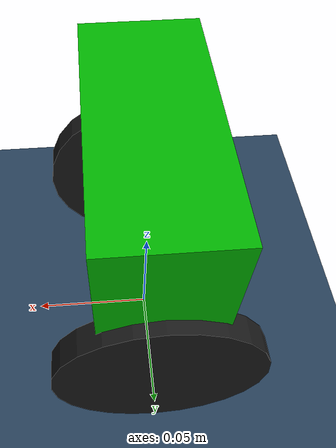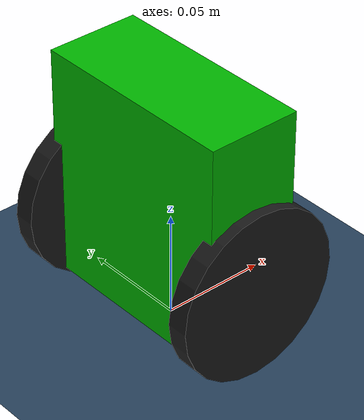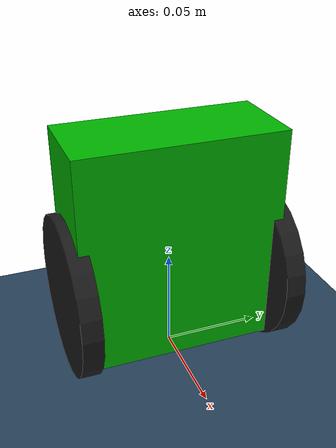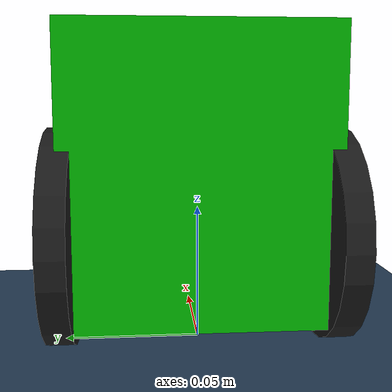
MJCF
<mujoco model="balboa_lab">
  <compiler angle="degree" coordinate="local" inertiafromgeom="false"/>
  <option timestep="0.002" gravity="0 0 -9.81" integrator="RK4"/>

  <default>
    <geom friction="2.5 0.1 0.01" margin="0.001"/>
    <joint damping="0.01" frictionloss="0.01" armature="0.002"/>
  </default>

  <asset>
      <texture name="grid" type="2d" builtin="checker" rgb1=".1 .2 .3" rgb2=".2 .3 .4" width="800" height="800" mark="edge" markrgb=".1 .1 .1"/>
      <material name="grid" texture="grid" texrepeat="1 1" texuniform="true"/>
  </asset>

  <worldbody>
    <light directional="true" diffuse="0.8 0.8 0.8" pos="0 0 10" dir="0 0 -1"/>
    <geom name="floor" type="plane" size="0 0 .05" material="grid" condim="4"/>

    <body name="balboa_base" pos="0 0 0.04">

      <freejoint name="root"/>

      <inertial pos="0 0 0.023" mass="0.316" diaginertia="444.43e-6 444.43e-6 444.43e-6"/>
      <geom name="body_geom" type="box" size="0.022 0.05 0.0545" pos="0 0 0.023" rgba="0 0.7 0 1"/>

      <body name="left_motor_shaft" pos="0 0.05 0">
        <joint name="left_motor_joint" type="hinge" axis="0 1 0"/>

        <inertial pos="0 0 0" mass="0.002" diaginertia="1e-6 1e-6 1e-6"/>

        <geom name="left_shaft_geom" type="cylinder" size="0.01 0.005" euler="90 0 0" rgba="1 0 0 0" contype="0" conaffinity="0"/>

        <body name="left_wheel" pos="0 0 0">
          <!-- CORRECTED: changed to solimplimit and solreflimit -->
          <joint name="left_backlash_joint" type="hinge" axis="0 1 0" limited="true" range="-1.5 1.5" damping="0.003" frictionloss="0" armature="0" solimplimit="0.9 0.95 0.001" solreflimit="0.04 1"/>
          <inertial pos="0 0 0" mass="0.016" diaginertia="13.445e-6 13.445e-6 13.445e-6"/>
          <geom name="wheel_l_geom" type="cylinder" size="0.04 0.005" euler="90 0 0" rgba="0.1 0.1 0.1 1"/>
        </body>
      </body>

      <body name="right_motor_shaft" pos="0 -0.05 0">
        <joint name="right_motor_joint" type="hinge" axis="0 1 0"/>

        <inertial pos="0 0 0" mass="0.002" diaginertia="1e-6 1e-6 1e-6"/>
        <geom name="right_shaft_geom" type="cylinder" size="0.01 0.005" euler="90 0 0" rgba="1 0 0 0" contype="0" conaffinity="0"/>

        <body name="right_wheel" pos="0 0 0">
          <!-- CORRECTED: changed to solimplimit and solreflimit -->
          <joint name="right_backlash_joint" type="hinge" axis="0 1 0" limited="true" range="-1.5 1.5" damping="0.003" frictionloss="0" armature="0" solimplimit="0.9 0.95 0.001" solreflimit="0.04 1"/>
          <inertial pos="0 0 0" mass="0.016" diaginertia="13.445e-6 13.445e-6 13.445e-6"/>
          <geom name="wheel_r_geom" type="cylinder" size="0.04 0.005" euler="90 0 0" rgba="0.1 0.1 0.1 1"/>
        </body>
      </body>

    </body>
  </worldbody>

  <actuator>
    <general name="left_motor" joint="left_motor_joint" ctrlrange="-1 1" forcerange="-0.22 0.22"/>
    <general name="right_motor" joint="right_motor_joint" ctrlrange="-1 1" forcerange="-0.22 0.22"/>
  </actuator>
</mujoco>
